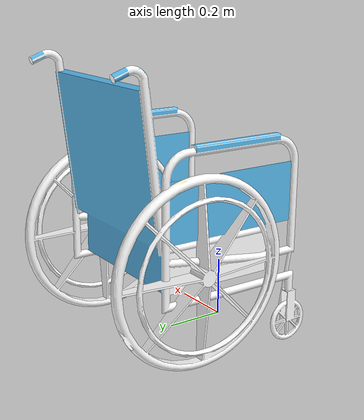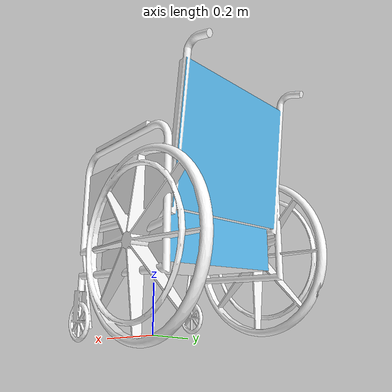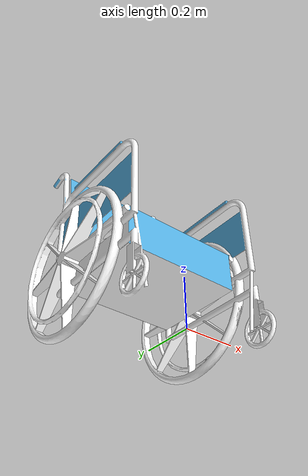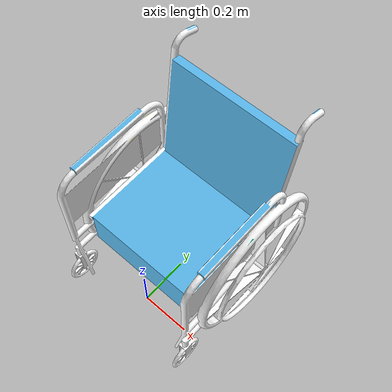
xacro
<?xml version="1.0"?>
<robot xmlns:xacro="http://www.ros.org/wiki/xacro" >

    <xacro:include filename="inertial_macros.xacro"/>

    <material name="white">
        <color rgba="1 1 1 1" />
    </material>

    <material name="orange">
        <color rgba="1 0.3 0.1 1"/>
    </material>

    <material name="blue">
        <color rgba="0.2 0.2 1 1"/>
    </material>

    <material name="black">
        <color rgba="0 0 0 1"/>
    </material>

    <!-- BASE LINK -->

    <link name="base_link"></link>

    <link name="body">
        <visual>
            <geometry>
                <mesh filename="package://wheelchair_bot/meshes/body.dae" />
            </geometry>
            <origin xyz="0 0 0" rpy="0 0 0" />
        </visual>
        <collision>
            <geometry>
                <mesh filename="package://wheelchair_bot/meshes/body.dae" />
            </geometry>
            <origin xyz="0 0 0" rpy="0 0 0" />
        </collision>
    </link>

    <joint name="body_joint" type="fixed">
        <parent link="base_link"/>
        <child link="body"/>
        <origin xyz="0 0 0.4009"/>
    </joint>

    <!-- LEFT WHEEL LINK -->

    <joint name="left_wheel_joint" type="continuous">
        <parent link="base_link"/>
        <child link="left_wheel"/>
        <origin xyz="0.33 0.29 0.3053" rpy="0 0 0" />
        <axis xyz="1 0 0"/>
    </joint>

    <link name="left_wheel">
        <visual>
            <geometry>
                <mesh filename="package://wheelchair_bot/meshes/wheel.dae" />
            </geometry>
            <origin xyz="0 0.024 -0.009" rpy="0 0 0" />
        </visual>
        <collision>
            <geometry>
                <mesh filename="package://wheelchair_bot/meshes/wheel.dae" />
            </geometry>
            <origin xyz="0 0.024 -0.009" rpy="0 0 0" />
        </collision>
        <xacro:inertial_cylinder mass="0.1" length="0.04" radius="0.05">
            <origin xyz="0 0 0" rpy="0 0 0"/>
        </xacro:inertial_cylinder>
    </link>

    <!-- RIGHT WHEEL LINK -->

    <joint name="right_wheel_joint" type="continuous">
        <parent link="base_link"/>
        <child link="right_wheel"/>
        <origin xyz="-0.33 0.29 0.3053" rpy="0 0 3.14159" />
        <axis xyz="-1 0 0"/>
    </joint>

    <link name="right_wheel">
        <visual>
            <geometry>
                <mesh filename="package://wheelchair_bot/meshes/wheel.dae" />
            </geometry>
            <origin xyz="0 0.024 -0.009" rpy="0 0 0" />
        </visual>
        <collision>
            <geometry>
                <mesh filename="package://wheelchair_bot/meshes/wheel.dae" />
            </geometry>
            <origin xyz="0 0.024 -0.009" rpy="0 0 0" />
        </collision>
        <xacro:inertial_cylinder mass="0.1" length="0.04" radius="0.05">
            <origin xyz="0 0 0" rpy="0 0 0"/>
        </xacro:inertial_cylinder>
    </link>

</robot>
